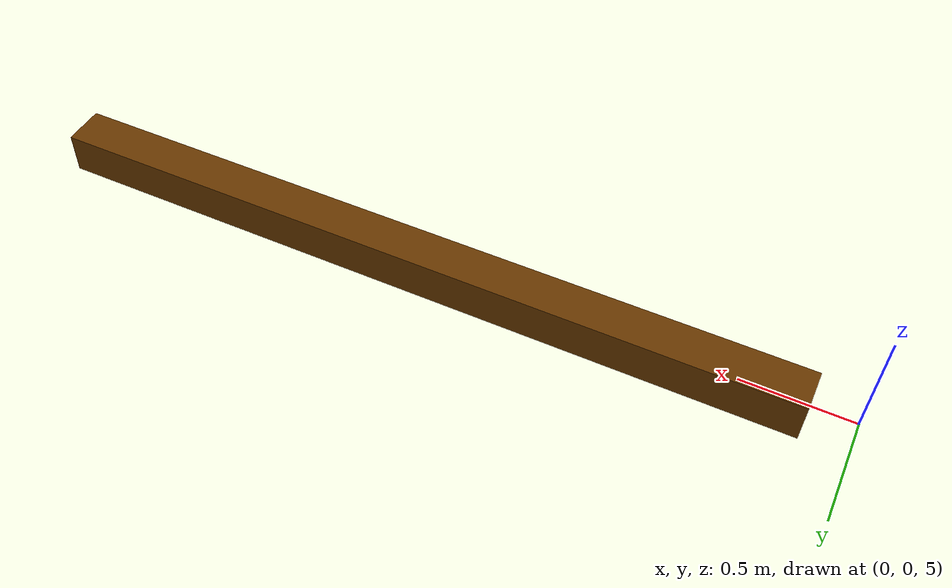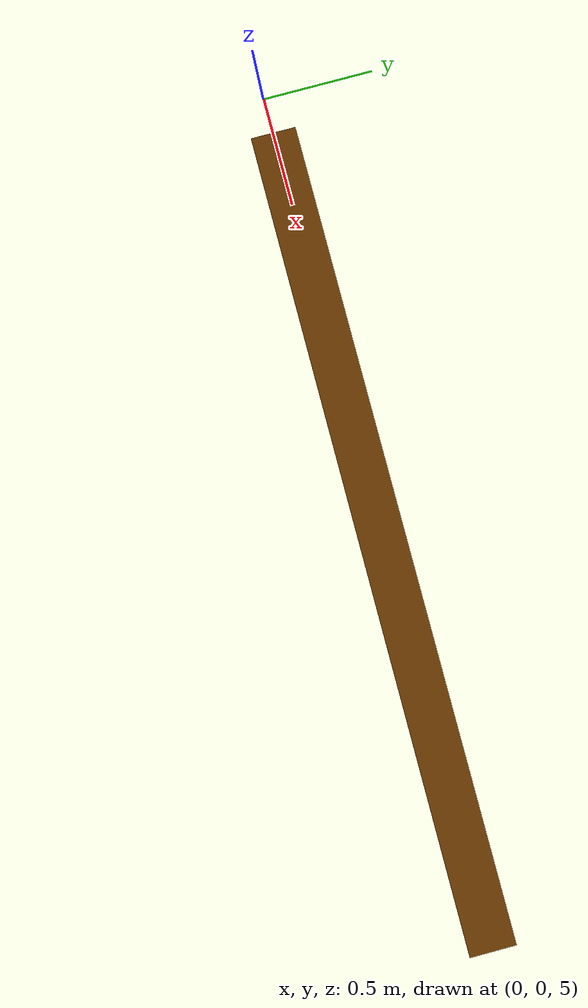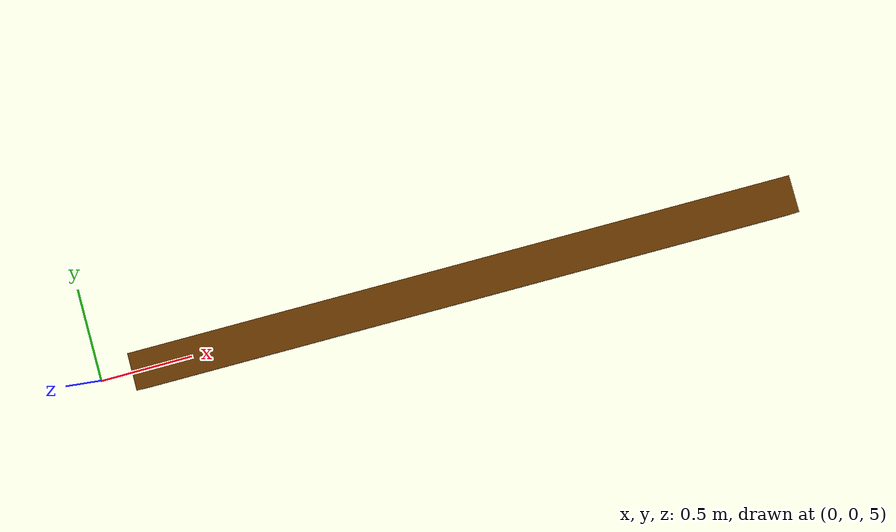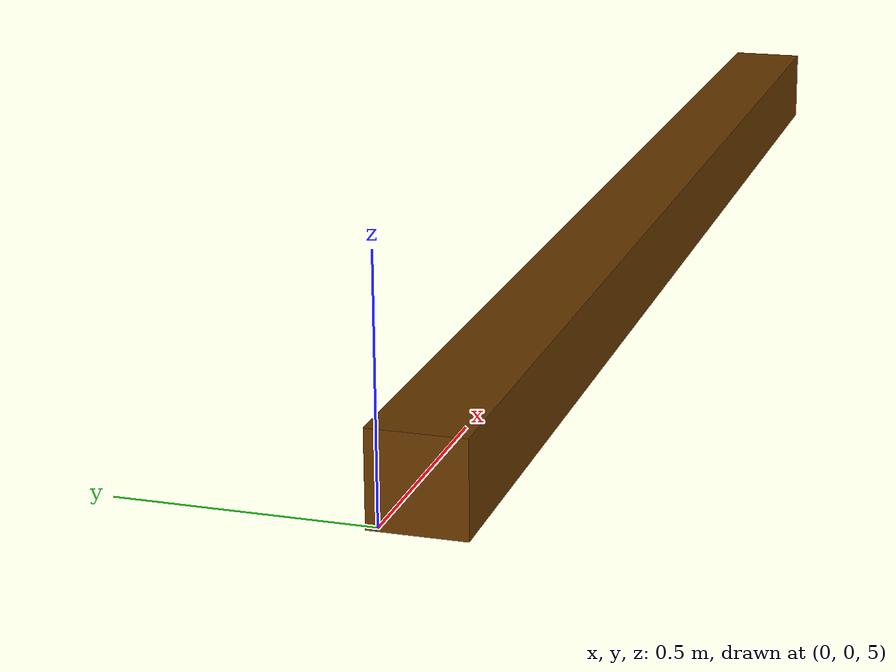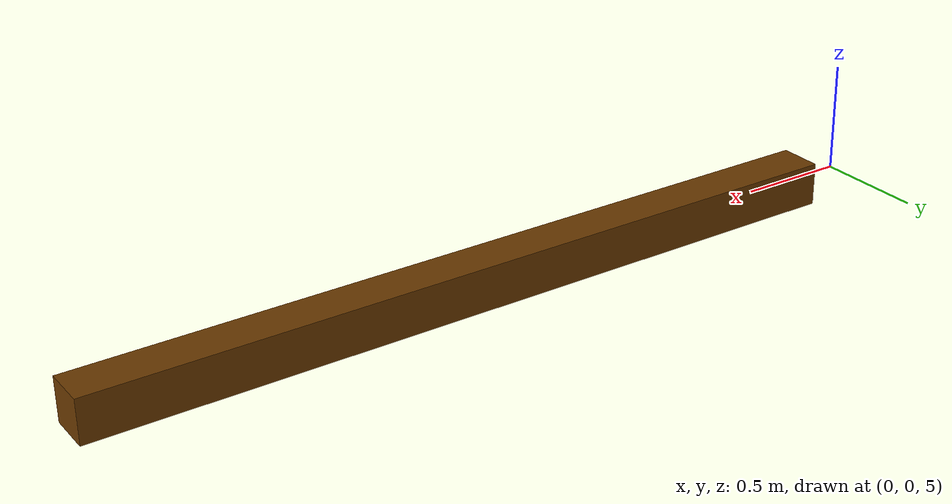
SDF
<?xml version="1.0"?>
<sdf version="1.5">
  <world name="default">
    <model name="box_imu_noise">
      <pose>2 0 5 0 0 0</pose>
      <link name="link">
        <inertial>
          <inertia>
            <ixx>1.8</ixx>
            <ixy>0.0</ixy>
            <ixz>0.0</ixz>
            <iyy>10.8</iyy>
            <iyz>0.0</iyz>
            <izz>10.8</izz>
          </inertia>
          <mass>10.0</mass>
        </inertial>
        <collision name="collision">
          <geometry>
            <box>
              <size>3.6 0.2 0.2</size>
            </box>
          </geometry>
        </collision>
        <visual name="visual">
          <geometry>
            <box>
              <size>3.6 0.2 0.2</size>
            </box>
          </geometry>
          <material>
            <ambient>0.2 0.2 0.2 1.0</ambient>
            <diffuse>.421 0.225 0.0 1.0</diffuse>
          </material>
        </visual>
        <sensor name='imu_sensor' type='imu'>
          <always_on>1</always_on>
          <update_rate>1000</update_rate>
          <visualize>true</visualize>
          <topic>imu</topic>
          <imu>
            <angular_velocity>
              <x>
                <noise type="gaussian">
                  <mean>0</mean>
                  <stddev>0.0002</stddev>
                  <bias_mean>7.5e-06</bias_mean>
                  <bias_stddev>8e-07</bias_stddev>
                  <dynamic_bias_stddev>0.01</dynamic_bias_stddev>
                  <dynamic_bias_correlation_time>10</dynamic_bias_correlation_time>
                </noise>
              </x>
              <y>
                <noise type="gaussian">
                  <mean>0</mean>
                  <stddev>0.0002</stddev>
                  <bias_mean>7.5e-06</bias_mean>
                  <bias_stddev>8e-07</bias_stddev>
                  <dynamic_bias_stddev>0.01</dynamic_bias_stddev>
                  <dynamic_bias_correlation_time>10</dynamic_bias_correlation_time>
                </noise>
              </y>
              <z>
                <noise type="gaussian">
                  <mean>0</mean>
                  <stddev>0.0002</stddev>
                  <bias_mean>7.5e-06</bias_mean>
                  <bias_stddev>8e-07</bias_stddev>
                  <dynamic_bias_stddev>0.01</dynamic_bias_stddev>
                  <dynamic_bias_correlation_time>10</dynamic_bias_correlation_time>
                </noise>
              </z>
            </angular_velocity>

            <linear_acceleration>
              <x>
                <noise type="gaussian">
                  <mean>0</mean>
                  <stddev>0.017</stddev>
                  <bias_mean>0.1</bias_mean>
                  <bias_stddev>0.001</bias_stddev>
                  <dynamic_bias_stddev>0.01</dynamic_bias_stddev>
                  <dynamic_bias_correlation_time>10</dynamic_bias_correlation_time>
                </noise>
              </x>
              <y>
                <noise type="gaussian">
                  <mean>0</mean>
                  <stddev>0.017</stddev>
                  <bias_mean>0.1</bias_mean>
                  <bias_stddev>0.001</bias_stddev>
                  <dynamic_bias_stddev>0.01</dynamic_bias_stddev>
                  <dynamic_bias_correlation_time>10</dynamic_bias_correlation_time>
                </noise>
              </y>
              <z>
                <noise type="gaussian">
                  <mean>0</mean>
                  <stddev>0.017</stddev>
                  <bias_mean>0.1</bias_mean>
                  <bias_stddev>0.001</bias_stddev>
                  <dynamic_bias_stddev>0.01</dynamic_bias_stddev>
                  <dynamic_bias_correlation_time>10</dynamic_bias_correlation_time>
                </noise>
              </z>
            </linear_acceleration>
          </imu>
        </sensor>
      </link>
    </model>

  </world>
</sdf>
